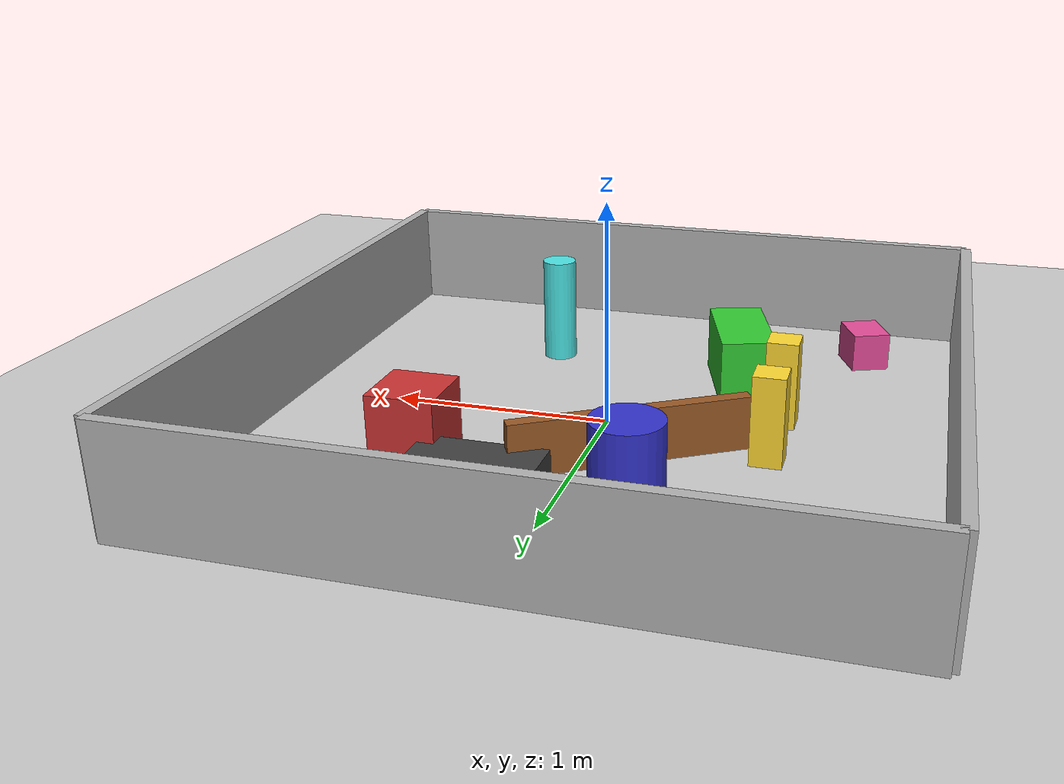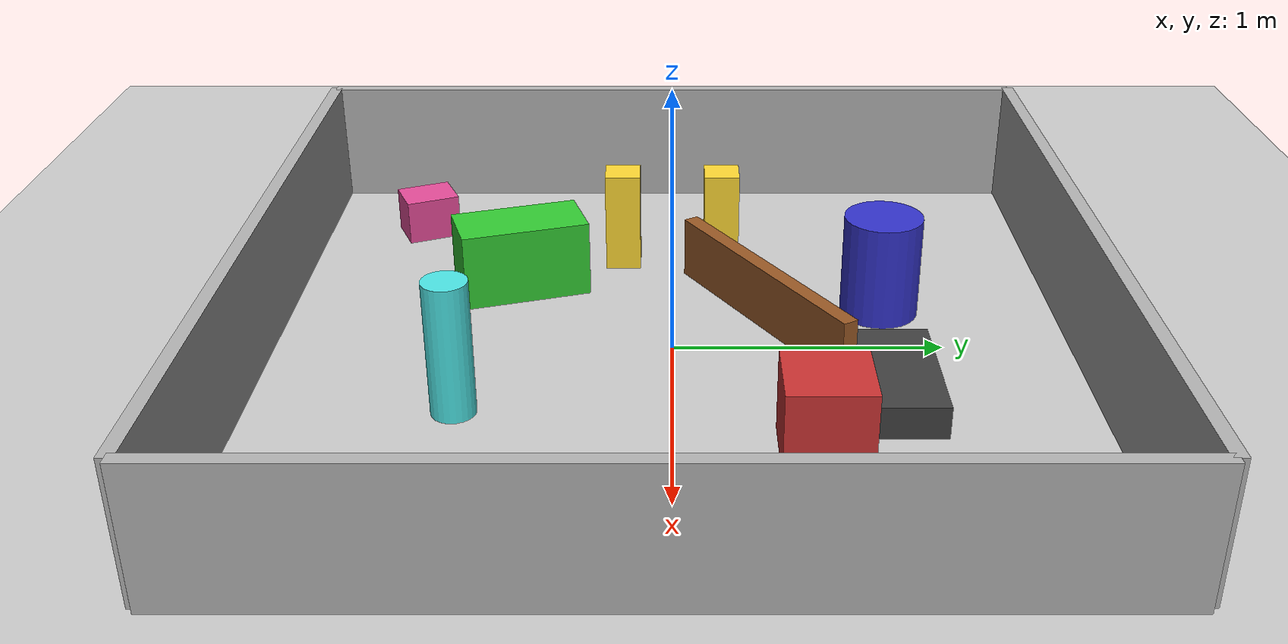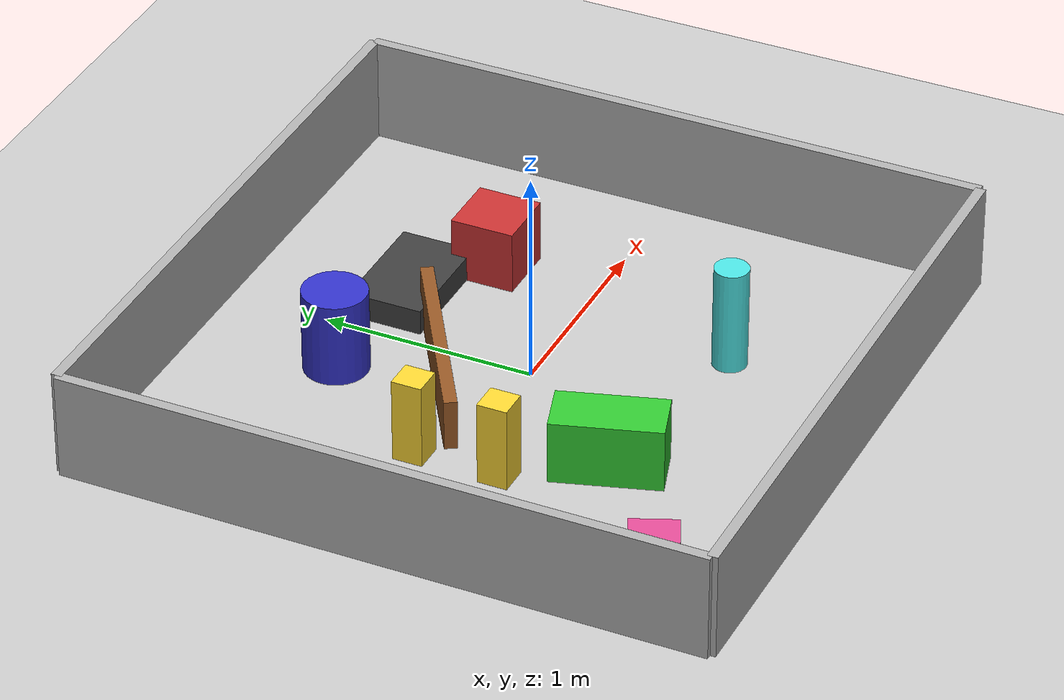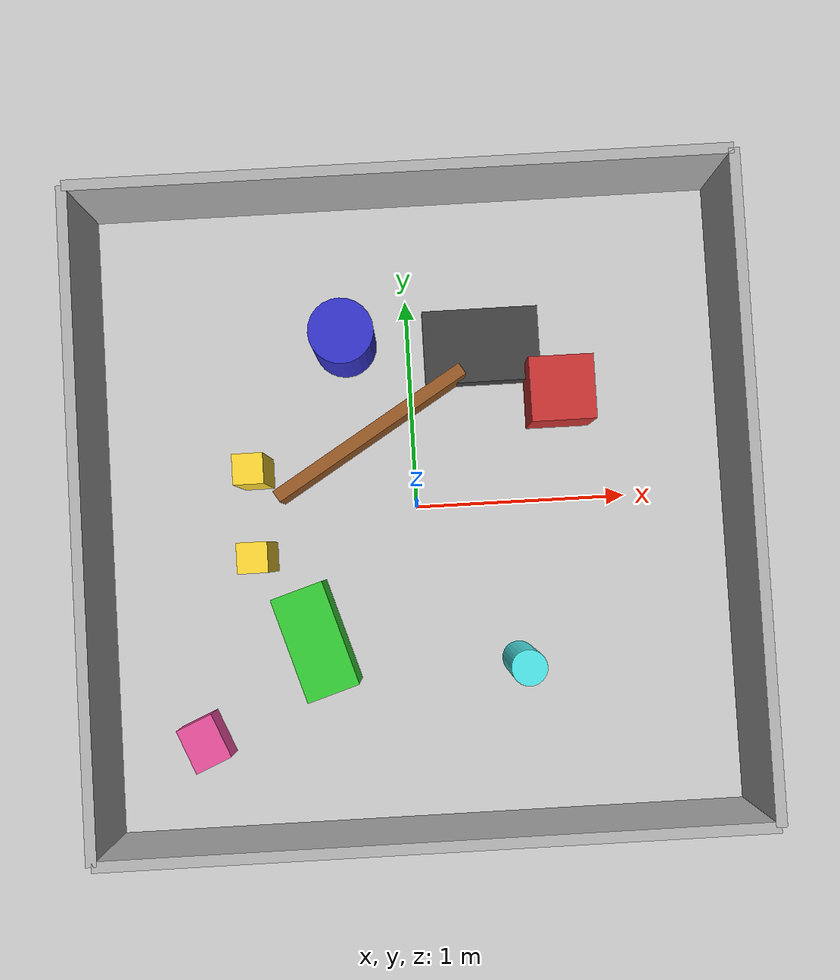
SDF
<?xml version="1.0"?>
<sdf version="1.8">
  <world name="robocept_eval_multi_obstacle">

    <!-- Physics -->
    <physics name="1ms" type="ode">
      <max_step_size>0.001</max_step_size>
      <real_time_factor>1.0</real_time_factor>
      <real_time_update_rate>1000</real_time_update_rate>
    </physics>

    <!-- Required plugins for Ignition Fortress -->
    <plugin filename="ignition-gazebo-physics-system" name="ignition::gazebo::systems::Physics"/>
    <plugin filename="ignition-gazebo-scene-broadcaster-system" name="ignition::gazebo::systems::SceneBroadcaster"/>
    <plugin filename="ignition-gazebo-user-commands-system" name="ignition::gazebo::systems::UserCommands"/>
    <plugin filename="ignition-gazebo-sensors-system" name="ignition::gazebo::systems::Sensors">
      <render_engine>ogre2</render_engine>
    </plugin>
    <plugin filename="ignition-gazebo-contact-system" name="ignition::gazebo::systems::Contact"/>
    <plugin filename="ignition-gazebo-imu-system" name="ignition::gazebo::systems::Imu"/>

    <!-- Lighting -->
    <light type="directional" name="sun">
      <cast_shadows>true</cast_shadows>
      <pose>0 0 10 0 0 0</pose>
      <diffuse>0.8 0.8 0.8 1</diffuse>
      <specular>0.2 0.2 0.2 1</specular>
      <attenuation>
        <range>1000</range>
        <constant>0.9</constant>
        <linear>0.01</linear>
        <quadratic>0.001</quadratic>
      </attenuation>
      <direction>-0.5 0.1 -0.9</direction>
    </light>

    <!-- Ground plane -->
    <model name="ground_plane">
      <static>true</static>
      <link name="link">
        <collision name="collision">
          <geometry>
            <plane><normal>0 0 1</normal><size>100 100</size></plane>
          </geometry>
        </collision>
        <visual name="visual">
          <geometry>
            <plane><normal>0 0 1</normal><size>100 100</size></plane>
          </geometry>
          <material>
            <ambient>0.8 0.8 0.8 1</ambient>
            <diffuse>0.8 0.8 0.8 1</diffuse>
          </material>
        </visual>
      </link>
    </model>

    <!-- North wall -->
    <model name="wall_north">
      <static>true</static>
      <pose>0 1.5 0.25 0 0 0</pose>
      <link name="link">
        <collision name="collision">
          <geometry><box><size>3.0 0.05 0.5</size></box></geometry>
        </collision>
        <visual name="visual">
          <geometry><box><size>3.0 0.05 0.5</size></box></geometry>
          <material><ambient>0.7 0.7 0.7 1</ambient><diffuse>0.7 0.7 0.7 1</diffuse></material>
        </visual>
      </link>
    </model>

    <!-- South wall -->
    <model name="wall_south">
      <static>true</static>
      <pose>0 -1.5 0.25 0 0 0</pose>
      <link name="link">
        <collision name="collision">
          <geometry><box><size>3.0 0.05 0.5</size></box></geometry>
        </collision>
        <visual name="visual">
          <geometry><box><size>3.0 0.05 0.5</size></box></geometry>
          <material><ambient>0.7 0.7 0.7 1</ambient><diffuse>0.7 0.7 0.7 1</diffuse></material>
        </visual>
      </link>
    </model>

    <!-- East wall -->
    <model name="wall_east">
      <static>true</static>
      <pose>1.5 0 0.25 0 0 1.5708</pose>
      <link name="link">
        <collision name="collision">
          <geometry><box><size>3.0 0.05 0.5</size></box></geometry>
        </collision>
        <visual name="visual">
          <geometry><box><size>3.0 0.05 0.5</size></box></geometry>
          <material><ambient>0.7 0.7 0.7 1</ambient><diffuse>0.7 0.7 0.7 1</diffuse></material>
        </visual>
      </link>
    </model>

    <!-- West wall -->
    <model name="wall_west">
      <static>true</static>
      <pose>-1.5 0 0.25 0 0 1.5708</pose>
      <link name="link">
        <collision name="collision">
          <geometry><box><size>3.0 0.05 0.5</size></box></geometry>
        </collision>
        <visual name="visual">
          <geometry><box><size>3.0 0.05 0.5</size></box></geometry>
          <material><ambient>0.7 0.7 0.7 1</ambient><diffuse>0.7 0.7 0.7 1</diffuse></material>
        </visual>
      </link>
    </model>

    <!-- Red box obstacle -->
    <model name="obstacle_1">
      <static>true</static>
      <pose>0.7 0.5 0.15 0 0 0</pose>
      <link name="link">
        <collision name="collision">
          <geometry><box><size>0.3 0.3 0.3</size></box></geometry>
        </collision>
        <visual name="visual">
          <geometry><box><size>0.3 0.3 0.3</size></box></geometry>
          <material><ambient>0.8 0.2 0.2 1</ambient><diffuse>0.8 0.2 0.2 1</diffuse></material>
        </visual>
      </link>
    </model>

    <!-- Green box obstacle -->
    <model name="obstacle_2">
      <static>true</static>
      <pose>-0.5 -0.6 0.15 0 0 0.3</pose>
      <link name="link">
        <collision name="collision">
          <geometry><box><size>0.25 0.5 0.3</size></box></geometry>
        </collision>
        <visual name="visual">
          <geometry><box><size>0.25 0.5 0.3</size></box></geometry>
          <material><ambient>0.2 0.8 0.2 1</ambient><diffuse>0.2 0.8 0.2 1</diffuse></material>
        </visual>
      </link>
    </model>

    <!-- Blue cylinder obstacle -->
    <model name="obstacle_3">
      <static>true</static>
      <pose>-0.3 0.8 0.2 0 0 0</pose>
      <link name="link">
        <collision name="collision">
          <geometry><cylinder><radius>0.15</radius><length>0.4</length></cylinder></geometry>
        </collision>
        <visual name="visual">
          <geometry><cylinder><radius>0.15</radius><length>0.4</length></cylinder></geometry>
          <material><ambient>0.2 0.2 0.8 1</ambient><diffuse>0.2 0.2 0.8 1</diffuse></material>
        </visual>
      </link>
    </model>

    <!-- Narrow passage (~0.28 m clearance) facing -X -->
    <model name="narrow_gate_a">
      <static>true</static>
      <pose>-0.75 -0.20 0.20 0 0 0</pose>
      <link name="link">
        <collision name="collision">
          <geometry><box><size>0.14 0.14 0.40</size></box></geometry>
        </collision>
        <visual name="visual">
          <geometry><box><size>0.14 0.14 0.40</size></box></geometry>
          <material><ambient>1.0 0.85 0.2 1</ambient><diffuse>1.0 0.85 0.2 1</diffuse></material>
        </visual>
      </link>
    </model>
    <model name="narrow_gate_b">
      <static>true</static>
      <pose>-0.75 0.20 0.20 0 0 0</pose>
      <link name="link">
        <collision name="collision">
          <geometry><box><size>0.14 0.14 0.40</size></box></geometry>
        </collision>
        <visual name="visual">
          <geometry><box><size>0.14 0.14 0.40</size></box></geometry>
          <material><ambient>1.0 0.85 0.2 1</ambient><diffuse>1.0 0.85 0.2 1</diffuse></material>
        </visual>
      </link>
    </model>

    <!-- Diagonal plank (forces non-trivial curvature) -->
    <model name="diagonal_barrier">
      <static>true</static>
      <pose>-0.2 0.35 0.12 0 0 0.55</pose>
      <link name="link">
        <collision name="collision">
          <geometry><box><size>1.05 0.06 0.24</size></box></geometry>
        </collision>
        <visual name="visual">
          <geometry><box><size>1.05 0.06 0.24</size></box></geometry>
          <material><ambient>0.6 0.35 0.15 1</ambient><diffuse>0.6 0.35 0.15 1</diffuse></material>
        </visual>
      </link>
    </model>

    <!-- Small clutter cluster near south-west -->
    <model name="clutter_small_a">
      <static>true</static>
      <pose>-1.05 -1.05 0.09 0 0 0.4</pose>
      <link name="link">
        <collision name="collision">
          <geometry><box><size>0.18 0.22 0.18</size></box></geometry>
        </collision>
        <visual name="visual">
          <geometry><box><size>0.18 0.22 0.18</size></box></geometry>
          <material><ambient>0.9 0.3 0.6 1</ambient><diffuse>0.9 0.3 0.6 1</diffuse></material>
        </visual>
      </link>
    </model>
    <model name="clutter_pole">
      <static>true</static>
      <pose>0.45 -0.75 0.25 0 0 0</pose>
      <link name="link">
        <collision name="collision">
          <geometry><cylinder><radius>0.08</radius><length>0.50</length></cylinder></geometry>
        </collision>
        <visual name="visual">
          <geometry><cylinder><radius>0.08</radius><length>0.50</length></cylinder></geometry>
          <material><ambient>0.3 0.9 0.9 1</ambient><diffuse>0.3 0.9 0.9 1</diffuse></material>
        </visual>
      </link>
    </model>

    <!-- Low wide block (alternative path constraint) -->
    <model name="low_platform">
      <static>true</static>
      <pose>0.35 0.75 0.06 0 0 0</pose>
      <link name="link">
        <collision name="collision">
          <geometry><box><size>0.55 0.35 0.12</size></box></geometry>
        </collision>
        <visual name="visual">
          <geometry><box><size>0.55 0.35 0.12</size></box></geometry>
          <material><ambient>0.25 0.25 0.25 1</ambient><diffuse>0.25 0.25 0.25 1</diffuse></material>
        </visual>
      </link>
    </model>

  </world>
</sdf>
